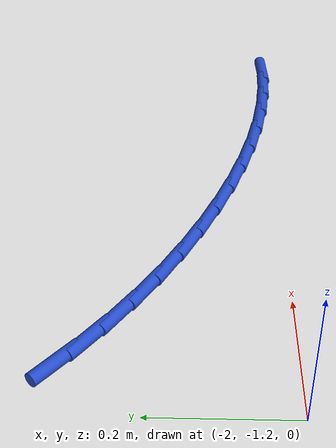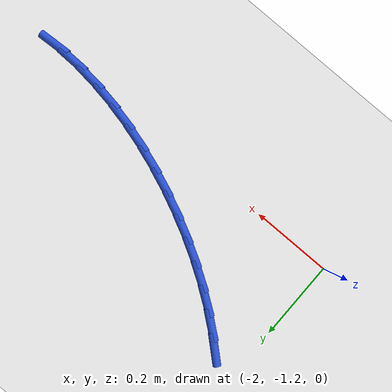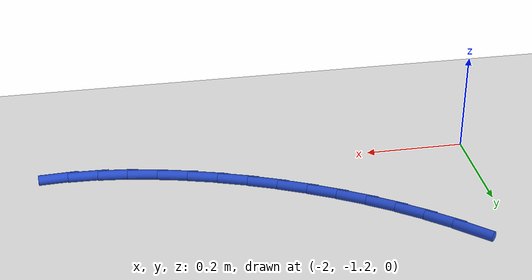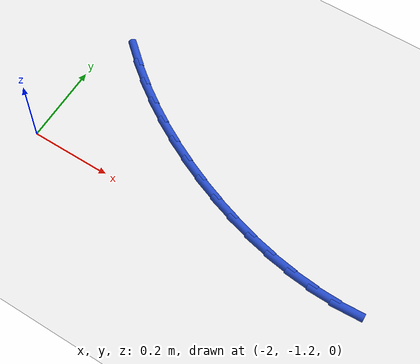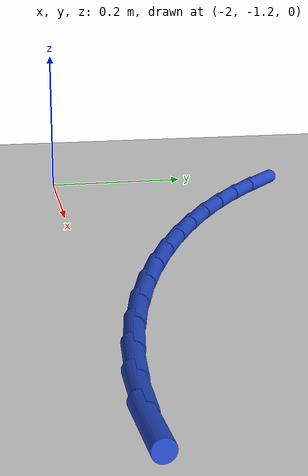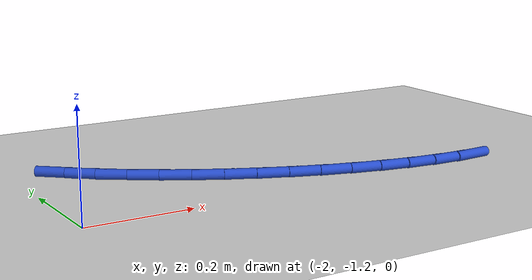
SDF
<sdf version="1.6">
 <world name="default">
  <model name="ground_plane">
   <static>1</static>
   <link name="link">
    <collision name="collision">
     <geometry><plane><normal>0 0 1</normal><size>100 100</size></plane></geometry>
     <surface><friction><ode><mu>100</mu><mu2>50</mu2></ode></friction></surface>
    </collision>
    <visual name="visual">
     <cast_shadows>0</cast_shadows>
     <geometry><plane><normal>0 0 1</normal><size>100 100</size></plane></geometry>
     <material>
      <script><uri>file://media/materials/scripts/gazebo.material</uri><name>Gazebo/WhiteGlow</name></script>
     </material>
    </visual>
   </link>
  </model>
  <model name="line">
   <link name="link_75">
    <pose>-1.9246261914283171 -0.8890319096734248 0.01 0 1.57 -0.7263632947896973</pose>
    <collision name="collision">
     <geometry><cylinder><radius>0.01</radius><length>0.08</length></cylinder></geometry>
    </collision>
    <visual name="visual">
     <material>
      <script><name>Gazebo/Blue</name><uri>file://media/materials/scripts/gazebo.material</uri></script>
     </material>
     <geometry><cylinder><radius>0.01</radius><length>0.08</length></cylinder></geometry>
    </visual>
   </link>
   <link name="link_76">
    <pose>-1.8811556559244302 -0.9276506763724464 0.01 0 1.57 -0.6673831608377182</pose>
    <collision name="collision">
     <geometry><cylinder><radius>0.01</radius><length>0.08</length></cylinder></geometry>
    </collision>
    <visual name="visual">
     <material>
      <script><name>Gazebo/Blue</name><uri>file://media/materials/scripts/gazebo.material</uri></script>
     </material>
     <geometry><cylinder><radius>0.01</radius><length>0.08</length></cylinder></geometry>
    </visual>
   </link>
   <link name="link_77">
    <pose>-1.8352583132832192 -0.963817949226492 0.01 0 1.57 -0.6115260650792382</pose>
    <collision name="collision">
     <geometry><cylinder><radius>0.01</radius><length>0.08</length></cylinder></geometry>
    </collision>
    <visual name="visual">
     <material>
      <script><name>Gazebo/Blue</name><uri>file://media/materials/scripts/gazebo.material</uri></script>
     </material>
     <geometry><cylinder><radius>0.01</radius><length>0.08</length></cylinder></geometry>
    </visual>
   </link>
   <link name="link_78">
    <pose>-1.7871299133769416 -0.9975652375992111 0.01 0 1.57 -0.5586924334190193</pose>
    <collision name="collision">
     <geometry><cylinder><radius>0.01</radius><length>0.08</length></cylinder></geometry>
    </collision>
    <visual name="visual">
     <material>
      <script><name>Gazebo/Blue</name><uri>file://media/materials/scripts/gazebo.material</uri></script>
     </material>
     <geometry><cylinder><radius>0.01</radius><length>0.08</length></cylinder></geometry>
    </visual>
   </link>
   <link name="link_79">
    <pose>-1.7369662060778568 -1.0289240508542512 0.01 0 1.57 -0.5087302164722465</pose>
    <collision name="collision">
     <geometry><cylinder><radius>0.01</radius><length>0.08</length></cylinder></geometry>
    </collision>
    <visual name="visual">
     <material>
      <script><name>Gazebo/Blue</name><uri>file://media/materials/scripts/gazebo.material</uri></script>
     </material>
     <geometry><cylinder><radius>0.01</radius><length>0.08</length></cylinder></geometry>
    </visual>
   </link>
   <link name="link_80">
    <pose>-1.6849629412582214 -1.0579258983552606 0.01 0 1.57 -0.46145093365708817</pose>
    <collision name="collision">
     <geometry><cylinder><radius>0.01</radius><length>0.08</length></cylinder></geometry>
    </collision>
    <visual name="visual">
     <material>
      <script><name>Gazebo/Blue</name><uri>file://media/materials/scripts/gazebo.material</uri></script>
     </material>
     <geometry><cylinder><radius>0.01</radius><length>0.08</length></cylinder></geometry>
    </visual>
   </link>
   <link name="link_81">
    <pose>-1.6313158687902929 -1.0846022894658887 0.01 0 1.57 -0.41635403615669847</pose>
    <collision name="collision">
     <geometry><cylinder><radius>0.01</radius><length>0.08</length></cylinder></geometry>
    </collision>
    <visual name="visual">
     <material>
      <script><name>Gazebo/Blue</name><uri>file://media/materials/scripts/gazebo.material</uri></script>
     </material>
     <geometry><cylinder><radius>0.01</radius><length>0.08</length></cylinder></geometry>
    </visual>
   </link>
   <link name="link_82">
    <pose>-1.5762260164841906 -1.1089633839831723 0.01 0 1.57 -0.3706592476609054</pose>
    <collision name="collision">
     <geometry><cylinder><radius>0.01</radius><length>0.08</length></cylinder></geometry>
    </collision>
    <visual name="visual">
     <material>
      <script><name>Gazebo/Blue</name><uri>file://media/materials/scripts/gazebo.material</uri></script>
     </material>
     <geometry><cylinder><radius>0.01</radius><length>0.08</length></cylinder></geometry>
    </visual>
   </link>
   <link name="link_83">
    <pose>-1.5199393382458875 -1.1308376130249786 0.01 0 1.57 -0.3225732830167123</pose>
    <collision name="collision">
     <geometry><cylinder><radius>0.01</radius><length>0.08</length></cylinder></geometry>
    </collision>
    <visual name="visual">
     <material>
      <script><name>Gazebo/Blue</name><uri>file://media/materials/scripts/gazebo.material</uri></script>
     </material>
     <geometry><cylinder><radius>0.01</radius><length>0.08</length></cylinder></geometry>
    </visual>
   </link>
   <link name="link_84">
    <pose>-1.4627244982744407 -1.14996154324851 0.01 0 1.57 -0.271481457004654</pose>
    <collision name="collision">
     <geometry><cylinder><radius>0.01</radius><length>0.08</length></cylinder></geometry>
    </collision>
    <visual name="visual">
     <material>
      <script><name>Gazebo/Blue</name><uri>file://media/materials/scripts/gazebo.material</uri></script>
     </material>
     <geometry><cylinder><radius>0.01</radius><length>0.08</length></cylinder></geometry>
    </visual>
   </link>
   <link name="link_85">
    <pose>-1.404850336225696 -1.166071031578018 0.01 0 1.57 -0.21675790207699278</pose>
    <collision name="collision">
     <geometry><cylinder><radius>0.01</radius><length>0.08</length></cylinder></geometry>
    </collision>
    <visual name="visual">
     <material>
      <script><name>Gazebo/Blue</name><uri>file://media/materials/scripts/gazebo.material</uri></script>
     </material>
     <geometry><cylinder><radius>0.01</radius><length>0.08</length></cylinder></geometry>
    </visual>
   </link>
   <link name="link_86">
    <pose>-1.3465856917555012 -1.178901934937755 0.01 0 1.57 -0.15775951333739408</pose>
    <collision name="collision">
     <geometry><cylinder><radius>0.01</radius><length>0.08</length></cylinder></geometry>
    </collision>
    <visual name="visual">
     <material>
      <script><name>Gazebo/Blue</name><uri>file://media/materials/scripts/gazebo.material</uri></script>
     </material>
     <geometry><cylinder><radius>0.01</radius><length>0.08</length></cylinder></geometry>
    </visual>
   </link>
   <link name="link_87">
    <pose>-1.2881994045197016 -1.1881901102519743 0.01 0 1.57 -0.09384083892113963</pose>
    <collision name="collision">
     <geometry><cylinder><radius>0.01</radius><length>0.08</length></cylinder></geometry>
    </collision>
    <visual name="visual">
     <material>
      <script><name>Gazebo/Blue</name><uri>file://media/materials/scripts/gazebo.material</uri></script>
     </material>
     <geometry><cylinder><radius>0.01</radius><length>0.08</length></cylinder></geometry>
    </visual>
   </link>
   <link name="link_88">
    <pose>-1.2299603141741438 -1.1936714144449276 0.01 0 1.57 -0.02438491849411452</pose>
    <collision name="collision">
     <geometry><cylinder><radius>0.01</radius><length>0.08</length></cylinder></geometry>
    </collision>
    <visual name="visual">
     <material>
      <script><name>Gazebo/Blue</name><uri>file://media/materials/scripts/gazebo.material</uri></script>
     </material>
     <geometry><cylinder><radius>0.01</radius><length>0.08</length></cylinder></geometry>
    </visual>
   </link>
   <link name="link_89">
    <pose>-1.1721372603746723 -1.1950817044408673 0.01 0 1.57 0.051144728129990116</pose>
    <collision name="collision">
     <geometry><cylinder><radius>0.01</radius><length>0.08</length></cylinder></geometry>
    </collision>
    <visual name="visual">
     <material>
      <script><name>Gazebo/Blue</name><uri>file://media/materials/scripts/gazebo.material</uri></script>
     </material>
     <geometry><cylinder><radius>0.01</radius><length>0.08</length></cylinder></geometry>
    </visual>
   </link>
  </model>
 </world>
</sdf>
